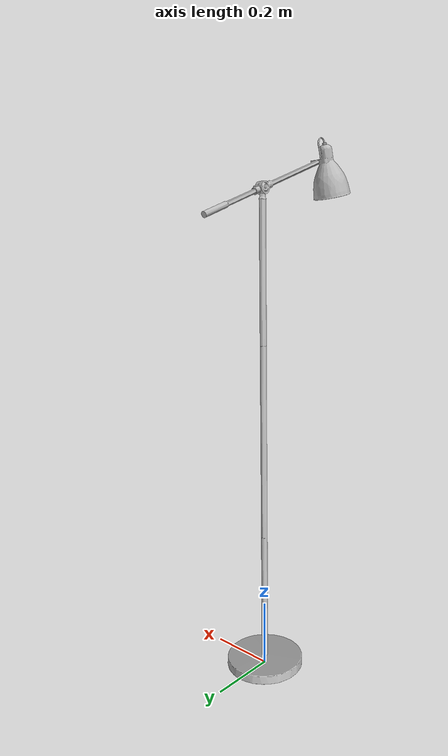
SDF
<sdf version="1.6">
	<model name="FloorLamps_Occ4b77538a7e_lod0">
		<link name="main_link">
			<visual name="visual_RootNode">
				<geometry>
					<mesh>
						<uri>model://FloorLamps_Occ4b77538a7e_lod0/meshes/visual_RootNode.dae</uri>
					</mesh>
				</geometry>
			</visual>
			<collision name="collision_RootNode_lod0_0">
				<geometry>
					<mesh>
						<uri>model://FloorLamps_Occ4b77538a7e_lod0/meshes/collision_RootNode_lod0_0.dae</uri>
					</mesh>
				</geometry>
			</collision>
		</link>
	</model>
</sdf>
